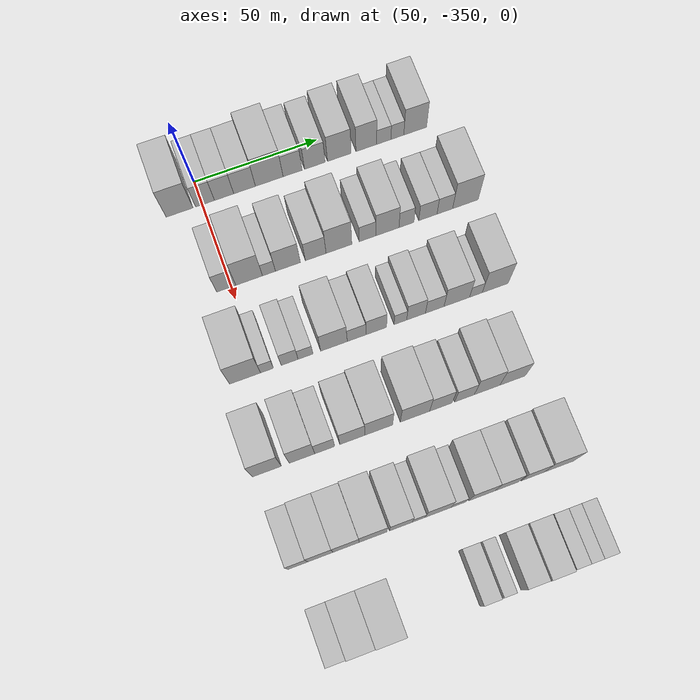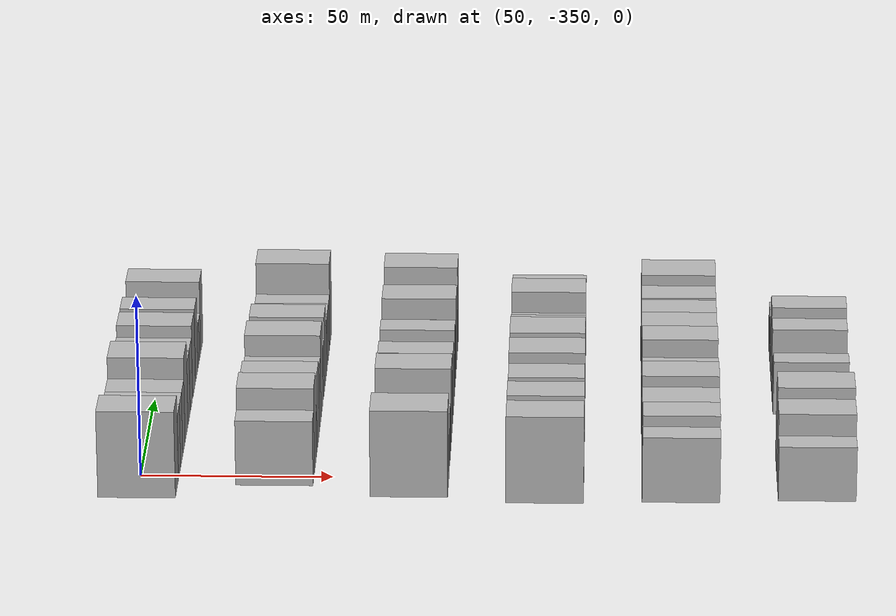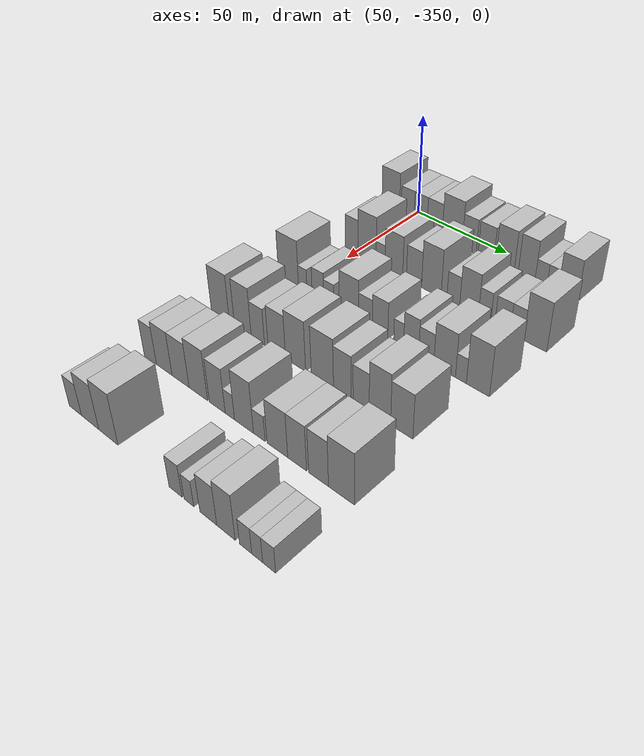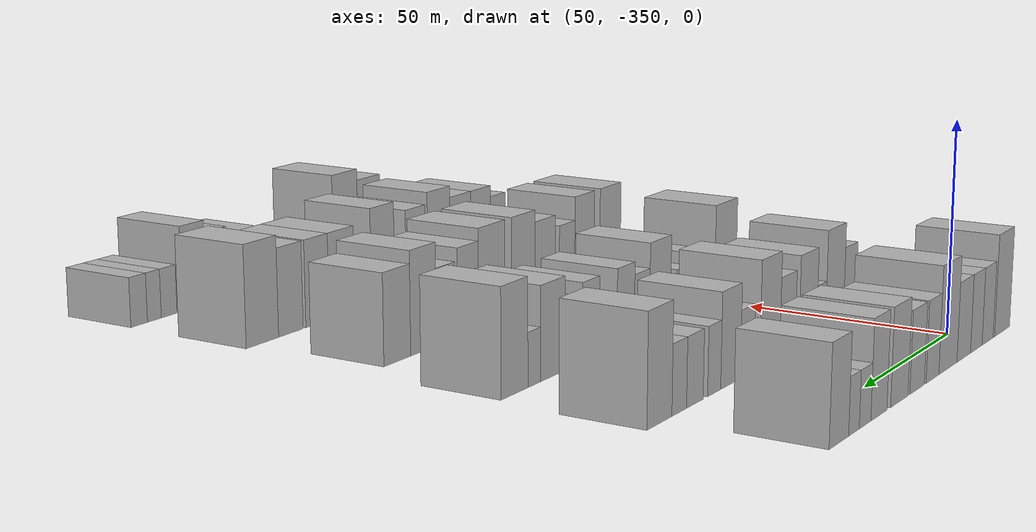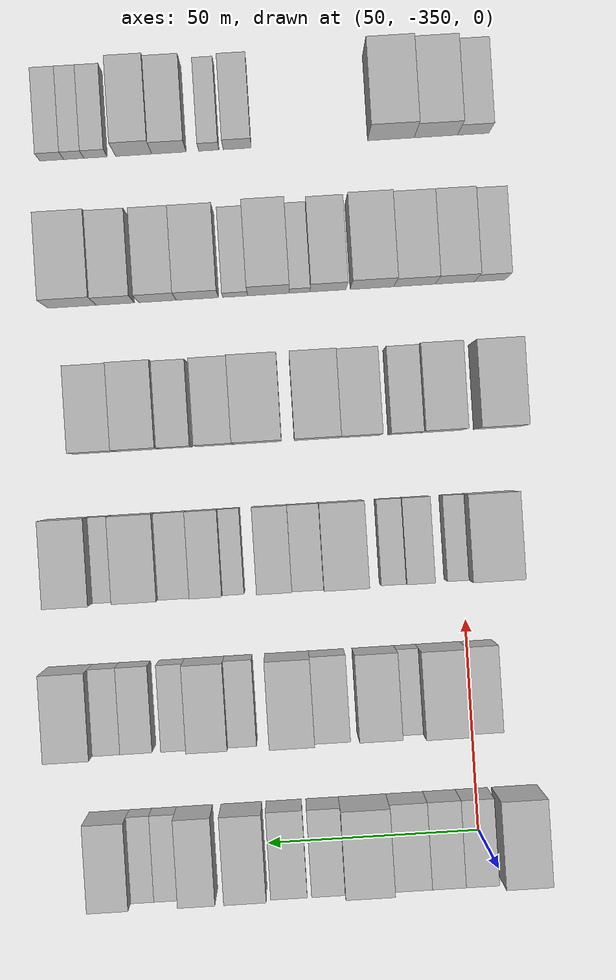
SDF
<sdf version="1.6">
 <world name="default">
  <model name="building_24">
   <static>1</static>
   <pose>50.0000 -359.0265 0 0.000000 0.000000 0.000000</pose>
   <link name="link">
    <pose>0 0 12.00 0 0 0</pose>
    <collision name="collision"><geometry><box><size>20.0000 10.7535 24.0000</size></box></geometry></collision>
    <visual name="visual">
     <cast_shadows>0</cast_shadows>
     <geometry><box><size>20.0000 10.7535 24.0000</size></box></geometry>
     <material>
      <script>
       <uri>model://HANNAS_wall/materials/scripts</uri>
       <uri>model://HANNAS_wall/materials/textures</uri>
       <name>vrc/HANNAS_wall</name>
      </script>
     </material>
    </visual>
   </link>
  </model>
  <model name="building_25">
   <static>1</static>
   <pose>50.0000 -348.8388 0 0.000000 0.000000 0.000000</pose>
   <link name="link">
    <pose>0 0 9.00 0 0 0</pose>
    <collision name="collision"><geometry><box><size>20.0000 7.6219 18.0000</size></box></geometry></collision>
    <visual name="visual">
     <cast_shadows>0</cast_shadows>
     <geometry><box><size>20.0000 7.6219 18.0000</size></box></geometry>
     <material>
      <script>
       <uri>model://HANNAS_wall/materials/scripts</uri>
       <uri>model://HANNAS_wall/materials/textures</uri>
       <name>vrc/HANNAS_wall</name>
      </script>
     </material>
    </visual>
   </link>
  </model>
  <model name="building_26">
   <static>1</static>
   <pose>50.0000 -341.1490 0 0.000000 0.000000 0.000000</pose>
   <link name="link">
    <pose>0 0 9.00 0 0 0</pose>
    <collision name="collision"><geometry><box><size>20.0000 7.7577 18.0000</size></box></geometry></collision>
    <visual name="visual">
     <cast_shadows>0</cast_shadows>
     <geometry><box><size>20.0000 7.7577 18.0000</size></box></geometry>
     <material>
      <script>
       <uri>model://HANNAS_wall/materials/scripts</uri>
       <uri>model://HANNAS_wall/materials/textures</uri>
       <name>vrc/HANNAS_wall</name>
      </script>
     </material>
    </visual>
   </link>
  </model>
  <model name="building_27">
   <static>1</static>
   <pose>50.0000 -332.8798 0 0.000000 0.000000 0.000000</pose>
   <link name="link">
    <pose>0 0 9.00 0 0 0</pose>
    <collision name="collision"><geometry><box><size>20.0000 8.7808 18.0000</size></box></geometry></collision>
    <visual name="visual">
     <cast_shadows>0</cast_shadows>
     <geometry><box><size>20.0000 8.7808 18.0000</size></box></geometry>
     <material>
      <script>
       <uri>model://HANNAS_wall/materials/scripts</uri>
       <uri>model://HANNAS_wall/materials/textures</uri>
       <name>vrc/HANNAS_wall</name>
      </script>
     </material>
    </visual>
   </link>
  </model>
  <model name="building_28">
   <static>1</static>
   <pose>50.0000 -322.8463 0 0.000000 0.000000 0.000000</pose>
   <link name="link">
    <pose>0 0 12.00 0 0 0</pose>
    <collision name="collision"><geometry><box><size>20.0000 11.2861 24.0000</size></box></geometry></collision>
    <visual name="visual">
     <cast_shadows>0</cast_shadows>
     <geometry><box><size>20.0000 11.2861 24.0000</size></box></geometry>
     <material>
      <script>
       <uri>model://HANNAS_wall/materials/scripts</uri>
       <uri>model://HANNAS_wall/materials/textures</uri>
       <name>vrc/HANNAS_wall</name>
      </script>
     </material>
    </visual>
   </link>
  </model>
  <model name="building_29">
   <static>1</static>
   <pose>50.0000 -313.3382 0 0.000000 0.000000 0.000000</pose>
   <link name="link">
    <pose>0 0 9.00 0 0 0</pose>
    <collision name="collision"><geometry><box><size>20.0000 7.7301 18.0000</size></box></geometry></collision>
    <visual name="visual">
     <cast_shadows>0</cast_shadows>
     <geometry><box><size>20.0000 7.7301 18.0000</size></box></geometry>
     <material>
      <script>
       <uri>model://HANNAS_wall/materials/scripts</uri>
       <uri>model://HANNAS_wall/materials/textures</uri>
       <name>vrc/HANNAS_wall</name>
      </script>
     </material>
    </visual>
   </link>
  </model>
  <model name="building_30">
   <static>1</static>
   <pose>50.0000 -304.2649 0 0.000000 0.000000 0.000000</pose>
   <link name="link">
    <pose>0 0 9.00 0 0 0</pose>
    <collision name="collision"><geometry><box><size>20.0000 8.4165 18.0000</size></box></geometry></collision>
    <visual name="visual">
     <cast_shadows>0</cast_shadows>
     <geometry><box><size>20.0000 8.4165 18.0000</size></box></geometry>
     <material>
      <script>
       <uri>model://HANNAS_wall/materials/scripts</uri>
       <uri>model://HANNAS_wall/materials/textures</uri>
       <name>vrc/HANNAS_wall</name>
      </script>
     </material>
    </visual>
   </link>
  </model>
  <model name="building_31">
   <static>1</static>
   <pose>50.0000 -294.2038 0 0.000000 0.000000 0.000000</pose>
   <link name="link">
    <pose>0 0 10.50 0 0 0</pose>
    <collision name="collision"><geometry><box><size>20.0000 9.7058 21.0000</size></box></geometry></collision>
    <visual name="visual">
     <cast_shadows>0</cast_shadows>
     <geometry><box><size>20.0000 9.7058 21.0000</size></box></geometry>
     <material>
      <script>
       <uri>model://HANNAS_wall/materials/scripts</uri>
       <uri>model://HANNAS_wall/materials/textures</uri>
       <name>vrc/HANNAS_wall</name>
      </script>
     </material>
    </visual>
   </link>
  </model>
  <model name="building_32">
   <static>1</static>
   <pose>50.0000 -283.0797 0 0.000000 0.000000 0.000000</pose>
   <link name="link">
    <pose>0 0 10.50 0 0 0</pose>
    <collision name="collision"><geometry><box><size>20.0000 8.5424 21.0000</size></box></geometry></collision>
    <visual name="visual">
     <cast_shadows>0</cast_shadows>
     <geometry><box><size>20.0000 8.5424 21.0000</size></box></geometry>
     <material>
      <script>
       <uri>model://HANNAS_wall/materials/scripts</uri>
       <uri>model://HANNAS_wall/materials/textures</uri>
       <name>vrc/HANNAS_wall</name>
      </script>
     </material>
    </visual>
   </link>
  </model>
  <model name="building_33">
   <static>1</static>
   <pose>50.0000 -275.8419 0 0.000000 0.000000 0.000000</pose>
   <link name="link">
    <pose>0 0 6.00 0 0 0</pose>
    <collision name="collision"><geometry><box><size>20.0000 5.9331 12.0000</size></box></geometry></collision>
    <visual name="visual">
     <cast_shadows>0</cast_shadows>
     <geometry><box><size>20.0000 5.9331 12.0000</size></box></geometry>
     <material>
      <script>
       <uri>model://HANNAS_wall/materials/scripts</uri>
       <uri>model://HANNAS_wall/materials/textures</uri>
       <name>vrc/HANNAS_wall</name>
      </script>
     </material>
    </visual>
   </link>
  </model>
  <model name="building_34">
   <static>1</static>
   <pose>50.0000 -270.1936 0 0.000000 0.000000 0.000000</pose>
   <link name="link">
    <pose>0 0 6.00 0 0 0</pose>
    <collision name="collision"><geometry><box><size>20.0000 5.3635 12.0000</size></box></geometry></collision>
    <visual name="visual">
     <cast_shadows>0</cast_shadows>
     <geometry><box><size>20.0000 5.3635 12.0000</size></box></geometry>
     <material>
      <script>
       <uri>model://HANNAS_wall/materials/scripts</uri>
       <uri>model://HANNAS_wall/materials/textures</uri>
       <name>vrc/HANNAS_wall</name>
      </script>
     </material>
    </visual>
   </link>
  </model>
  <model name="building_35">
   <static>1</static>
   <pose>50.0000 -262.7760 0 0.000000 0.000000 0.000000</pose>
   <link name="link">
    <pose>0 0 10.50 0 0 0</pose>
    <collision name="collision"><geometry><box><size>20.0000 9.4717 21.0000</size></box></geometry></collision>
    <visual name="visual">
     <cast_shadows>0</cast_shadows>
     <geometry><box><size>20.0000 9.4717 21.0000</size></box></geometry>
     <material>
      <script>
       <uri>model://HANNAS_wall/materials/scripts</uri>
       <uri>model://HANNAS_wall/materials/textures</uri>
       <name>vrc/HANNAS_wall</name>
      </script>
     </material>
    </visual>
   </link>
  </model>
  <model name="building_149">
   <static>1</static>
   <pose>85.0000 -352.0449 0 0.000000 0.000000 0.000000</pose>
   <link name="link">
    <pose>0 0 9.00 0 0 0</pose>
    <collision name="collision"><geometry><box><size>20.0000 7.5464 18.0000</size></box></geometry></collision>
    <visual name="visual">
     <cast_shadows>0</cast_shadows>
     <geometry><box><size>20.0000 7.5464 18.0000</size></box></geometry>
     <material>
      <script>
       <uri>model://HANNAS_wall/materials/scripts</uri>
       <uri>model://HANNAS_wall/materials/textures</uri>
       <name>vrc/HANNAS_wall</name>
      </script>
     </material>
    </visual>
   </link>
  </model>
  <model name="building_150">
   <static>1</static>
   <pose>85.0000 -342.9796 0 0.000000 0.000000 0.000000</pose>
   <link name="link">
    <pose>0 0 12.00 0 0 0</pose>
    <collision name="collision"><geometry><box><size>20.0000 10.5842 24.0000</size></box></geometry></collision>
    <visual name="visual">
     <cast_shadows>0</cast_shadows>
     <geometry><box><size>20.0000 10.5842 24.0000</size></box></geometry>
     <material>
      <script>
       <uri>model://HANNAS_wall/materials/scripts</uri>
       <uri>model://HANNAS_wall/materials/textures</uri>
       <name>vrc/HANNAS_wall</name>
      </script>
     </material>
    </visual>
   </link>
  </model>
  <model name="building_151">
   <static>1</static>
   <pose>85.0000 -335.1094 0 0.000000 0.000000 0.000000</pose>
   <link name="link">
    <pose>0 0 6.00 0 0 0</pose>
    <collision name="collision"><geometry><box><size>20.0000 5.1560 12.0000</size></box></geometry></collision>
    <visual name="visual">
     <cast_shadows>0</cast_shadows>
     <geometry><box><size>20.0000 5.1560 12.0000</size></box></geometry>
     <material>
      <script>
       <uri>model://HANNAS_wall/materials/scripts</uri>
       <uri>model://HANNAS_wall/materials/textures</uri>
       <name>vrc/HANNAS_wall</name>
      </script>
     </material>
    </visual>
   </link>
  </model>
  <model name="building_152">
   <static>1</static>
   <pose>85.0000 -327.5653 0 0.000000 0.000000 0.000000</pose>
   <link name="link">
    <pose>0 0 10.50 0 0 0</pose>
    <collision name="collision"><geometry><box><size>20.0000 9.9322 21.0000</size></box></geometry></collision>
    <visual name="visual">
     <cast_shadows>0</cast_shadows>
     <geometry><box><size>20.0000 9.9322 21.0000</size></box></geometry>
     <material>
      <script>
       <uri>model://HANNAS_wall/materials/scripts</uri>
       <uri>model://HANNAS_wall/materials/textures</uri>
       <name>vrc/HANNAS_wall</name>
      </script>
     </material>
    </visual>
   </link>
  </model>
  <model name="building_153">
   <static>1</static>
   <pose>85.0000 -316.4506 0 0.000000 0.000000 0.000000</pose>
   <link name="link">
    <pose>0 0 9.00 0 0 0</pose>
    <collision name="collision"><geometry><box><size>20.0000 8.2972 18.0000</size></box></geometry></collision>
    <visual name="visual">
     <cast_shadows>0</cast_shadows>
     <geometry><box><size>20.0000 8.2972 18.0000</size></box></geometry>
     <material>
      <script>
       <uri>model://HANNAS_wall/materials/scripts</uri>
       <uri>model://HANNAS_wall/materials/textures</uri>
       <name>vrc/HANNAS_wall</name>
      </script>
     </material>
    </visual>
   </link>
  </model>
  <model name="building_154">
   <static>1</static>
   <pose>85.0000 -307.1242 0 0.000000 0.000000 0.000000</pose>
   <link name="link">
    <pose>0 0 12.00 0 0 0</pose>
    <collision name="collision"><geometry><box><size>20.0000 10.3557 24.0000</size></box></geometry></collision>
    <visual name="visual">
     <cast_shadows>0</cast_shadows>
     <geometry><box><size>20.0000 10.3557 24.0000</size></box></geometry>
     <material>
      <script>
       <uri>model://HANNAS_wall/materials/scripts</uri>
       <uri>model://HANNAS_wall/materials/textures</uri>
       <name>vrc/HANNAS_wall</name>
      </script>
     </material>
    </visual>
   </link>
  </model>
  <model name="building_155">
   <static>1</static>
   <pose>85.0000 -295.6260 0 0.000000 0.000000 0.000000</pose>
   <link name="link">
    <pose>0 0 7.50 0 0 0</pose>
    <collision name="collision"><geometry><box><size>20.0000 6.6408 15.0000</size></box></geometry></collision>
    <visual name="visual">
     <cast_shadows>0</cast_shadows>
     <geometry><box><size>20.0000 6.6408 15.0000</size></box></geometry>
     <material>
      <script>
       <uri>model://HANNAS_wall/materials/scripts</uri>
       <uri>model://HANNAS_wall/materials/textures</uri>
       <name>vrc/HANNAS_wall</name>
      </script>
     </material>
    </visual>
   </link>
  </model>
  <model name="building_156">
   <static>1</static>
   <pose>85.0000 -287.5985 0 0.000000 0.000000 0.000000</pose>
   <link name="link">
    <pose>0 0 10.50 0 0 0</pose>
    <collision name="collision"><geometry><box><size>20.0000 9.4142 21.0000</size></box></geometry></collision>
    <visual name="visual">
     <cast_shadows>0</cast_shadows>
     <geometry><box><size>20.0000 9.4142 21.0000</size></box></geometry>
     <material>
      <script>
       <uri>model://HANNAS_wall/materials/scripts</uri>
       <uri>model://HANNAS_wall/materials/textures</uri>
       <name>vrc/HANNAS_wall</name>
      </script>
     </material>
    </visual>
   </link>
  </model>
  <model name="building_157">
   <static>1</static>
   <pose>85.0000 -279.8517 0 0.000000 0.000000 0.000000</pose>
   <link name="link">
    <pose>0 0 7.50 0 0 0</pose>
    <collision name="collision"><geometry><box><size>20.0000 6.0793 15.0000</size></box></geometry></collision>
    <visual name="visual">
     <cast_shadows>0</cast_shadows>
     <geometry><box><size>20.0000 6.0793 15.0000</size></box></geometry>
     <material>
      <script>
       <uri>model://HANNAS_wall/materials/scripts</uri>
       <uri>model://HANNAS_wall/materials/textures</uri>
       <name>vrc/HANNAS_wall</name>
      </script>
     </material>
    </visual>
   </link>
  </model>
  <model name="building_158">
   <static>1</static>
   <pose>85.0000 -271.0899 0 0.000000 0.000000 0.000000</pose>
   <link name="link">
    <pose>0 0 7.50 0 0 0</pose>
    <collision name="collision"><geometry><box><size>20.0000 7.4442 15.0000</size></box></geometry></collision>
    <visual name="visual">
     <cast_shadows>0</cast_shadows>
     <geometry><box><size>20.0000 7.4442 15.0000</size></box></geometry>
     <material>
      <script>
       <uri>model://HANNAS_wall/materials/scripts</uri>
       <uri>model://HANNAS_wall/materials/textures</uri>
       <name>vrc/HANNAS_wall</name>
      </script>
     </material>
    </visual>
   </link>
  </model>
  <model name="building_159">
   <static>1</static>
   <pose>85.0000 -264.1698 0 0.000000 0.000000 0.000000</pose>
   <link name="link">
    <pose>0 0 7.50 0 0 0</pose>
    <collision name="collision"><geometry><box><size>20.0000 6.3959 15.0000</size></box></geometry></collision>
    <visual name="visual">
     <cast_shadows>0</cast_shadows>
     <geometry><box><size>20.0000 6.3959 15.0000</size></box></geometry>
     <material>
      <script>
       <uri>model://HANNAS_wall/materials/scripts</uri>
       <uri>model://HANNAS_wall/materials/textures</uri>
       <name>vrc/HANNAS_wall</name>
      </script>
     </material>
    </visual>
   </link>
  </model>
  <model name="building_160">
   <static>1</static>
   <pose>85.0000 -255.7183 0 0.000000 0.000000 0.000000</pose>
   <link name="link">
    <pose>0 0 12.00 0 0 0</pose>
    <collision name="collision"><geometry><box><size>20.0000 10.5071 24.0000</size></box></geometry></collision>
    <visual name="visual">
     <cast_shadows>0</cast_shadows>
     <geometry><box><size>20.0000 10.5071 24.0000</size></box></geometry>
     <material>
      <script>
       <uri>model://HANNAS_wall/materials/scripts</uri>
       <uri>model://HANNAS_wall/materials/textures</uri>
       <name>vrc/HANNAS_wall</name>
      </script>
     </material>
    </visual>
   </link>
  </model>
  <model name="building_278">
   <static>1</static>
   <pose>120.0000 -356.4660 0 0.000000 0.000000 0.000000</pose>
   <link name="link">
    <pose>0 0 12.00 0 0 0</pose>
    <collision name="collision"><geometry><box><size>20.0000 11.9676 24.0000</size></box></geometry></collision>
    <visual name="visual">
     <cast_shadows>0</cast_shadows>
     <geometry><box><size>20.0000 11.9676 24.0000</size></box></geometry>
     <material>
      <script>
       <uri>model://HANNAS_wall/materials/scripts</uri>
       <uri>model://HANNAS_wall/materials/textures</uri>
       <name>vrc/HANNAS_wall</name>
      </script>
     </material>
    </visual>
   </link>
  </model>
  <model name="building_279">
   <static>1</static>
   <pose>120.0000 -347.9840 0 0.000000 0.000000 0.000000</pose>
   <link name="link">
    <pose>0 0 6.00 0 0 0</pose>
    <collision name="collision"><geometry><box><size>20.0000 4.9965 12.0000</size></box></geometry></collision>
    <visual name="visual">
     <cast_shadows>0</cast_shadows>
     <geometry><box><size>20.0000 4.9965 12.0000</size></box></geometry>
     <material>
      <script>
       <uri>model://HANNAS_wall/materials/scripts</uri>
       <uri>model://HANNAS_wall/materials/textures</uri>
       <name>vrc/HANNAS_wall</name>
      </script>
     </material>
    </visual>
   </link>
  </model>
  <model name="building_280">
   <static>1</static>
   <pose>120.0000 -339.1944 0 0.000000 0.000000 0.000000</pose>
   <link name="link">
    <pose>0 0 7.50 0 0 0</pose>
    <collision name="collision"><geometry><box><size>20.0000 6.5827 15.0000</size></box></geometry></collision>
    <visual name="visual">
     <cast_shadows>0</cast_shadows>
     <geometry><box><size>20.0000 6.5827 15.0000</size></box></geometry>
     <material>
      <script>
       <uri>model://HANNAS_wall/materials/scripts</uri>
       <uri>model://HANNAS_wall/materials/textures</uri>
       <name>vrc/HANNAS_wall</name>
      </script>
     </material>
    </visual>
   </link>
  </model>
  <model name="building_281">
   <static>1</static>
   <pose>120.0000 -332.9940 0 0.000000 0.000000 0.000000</pose>
   <link name="link">
    <pose>0 0 6.00 0 0 0</pose>
    <collision name="collision"><geometry><box><size>20.0000 5.8182 12.0000</size></box></geometry></collision>
    <visual name="visual">
     <cast_shadows>0</cast_shadows>
     <geometry><box><size>20.0000 5.8182 12.0000</size></box></geometry>
     <material>
      <script>
       <uri>model://HANNAS_wall/materials/scripts</uri>
       <uri>model://HANNAS_wall/materials/textures</uri>
       <name>vrc/HANNAS_wall</name>
      </script>
     </material>
    </visual>
   </link>
  </model>
  <model name="building_282">
   <static>1</static>
   <pose>120.0000 -321.8644 0 0.000000 0.000000 0.000000</pose>
   <link name="link">
    <pose>0 0 10.50 0 0 0</pose>
    <collision name="collision"><geometry><box><size>20.0000 10.4409 21.0000</size></box></geometry></collision>
    <visual name="visual">
     <cast_shadows>0</cast_shadows>
     <geometry><box><size>20.0000 10.4409 21.0000</size></box></geometry>
     <material>
      <script>
       <uri>model://HANNAS_wall/materials/scripts</uri>
       <uri>model://HANNAS_wall/materials/textures</uri>
       <name>vrc/HANNAS_wall</name>
      </script>
     </material>
    </visual>
   </link>
  </model>
  <model name="building_283">
   <static>1</static>
   <pose>120.0000 -312.9675 0 0.000000 0.000000 0.000000</pose>
   <link name="link">
    <pose>0 0 7.50 0 0 0</pose>
    <collision name="collision"><geometry><box><size>20.0000 7.3531 15.0000</size></box></geometry></collision>
    <visual name="visual">
     <cast_shadows>0</cast_shadows>
     <geometry><box><size>20.0000 7.3531 15.0000</size></box></geometry>
     <material>
      <script>
       <uri>model://HANNAS_wall/materials/scripts</uri>
       <uri>model://HANNAS_wall/materials/textures</uri>
       <name>vrc/HANNAS_wall</name>
      </script>
     </material>
    </visual>
   </link>
  </model>
  <model name="building_284">
   <static>1</static>
   <pose>120.0000 -305.2260 0 0.000000 0.000000 0.000000</pose>
   <link name="link">
    <pose>0 0 9.00 0 0 0</pose>
    <collision name="collision"><geometry><box><size>20.0000 8.1299 18.0000</size></box></geometry></collision>
    <visual name="visual">
     <cast_shadows>0</cast_shadows>
     <geometry><box><size>20.0000 8.1299 18.0000</size></box></geometry>
     <material>
      <script>
       <uri>model://HANNAS_wall/materials/scripts</uri>
       <uri>model://HANNAS_wall/materials/textures</uri>
       <name>vrc/HANNAS_wall</name>
      </script>
     </material>
    </visual>
   </link>
  </model>
  <model name="building_285">
   <static>1</static>
   <pose>120.0000 -295.6570 0 0.000000 0.000000 0.000000</pose>
   <link name="link">
    <pose>0 0 6.00 0 0 0</pose>
    <collision name="collision"><geometry><box><size>20.0000 5.0080 12.0000</size></box></geometry></collision>
    <visual name="visual">
     <cast_shadows>0</cast_shadows>
     <geometry><box><size>20.0000 5.0080 12.0000</size></box></geometry>
     <material>
      <script>
       <uri>model://HANNAS_wall/materials/scripts</uri>
       <uri>model://HANNAS_wall/materials/textures</uri>
       <name>vrc/HANNAS_wall</name>
      </script>
     </material>
    </visual>
   </link>
  </model>
  <model name="building_286">
   <static>1</static>
   <pose>120.0000 -289.4142 0 0.000000 0.000000 0.000000</pose>
   <link name="link">
    <pose>0 0 9.00 0 0 0</pose>
    <collision name="collision"><geometry><box><size>20.0000 7.4776 18.0000</size></box></geometry></collision>
    <visual name="visual">
     <cast_shadows>0</cast_shadows>
     <geometry><box><size>20.0000 7.4776 18.0000</size></box></geometry>
     <material>
      <script>
       <uri>model://HANNAS_wall/materials/scripts</uri>
       <uri>model://HANNAS_wall/materials/textures</uri>
       <name>vrc/HANNAS_wall</name>
      </script>
     </material>
    </visual>
   </link>
  </model>
  <model name="building_287">
   <static>1</static>
   <pose>120.0000 -281.9789 0 0.000000 0.000000 0.000000</pose>
   <link name="link">
    <pose>0 0 7.50 0 0 0</pose>
    <collision name="collision"><geometry><box><size>20.0000 7.3929 15.0000</size></box></geometry></collision>
    <visual name="visual">
     <cast_shadows>0</cast_shadows>
     <geometry><box><size>20.0000 7.3929 15.0000</size></box></geometry>
     <material>
      <script>
       <uri>model://HANNAS_wall/materials/scripts</uri>
       <uri>model://HANNAS_wall/materials/textures</uri>
       <name>vrc/HANNAS_wall</name>
      </script>
     </material>
    </visual>
   </link>
  </model>
  <model name="building_288">
   <static>1</static>
   <pose>120.0000 -273.1396 0 0.000000 0.000000 0.000000</pose>
   <link name="link">
    <pose>0 0 10.50 0 0 0</pose>
    <collision name="collision"><geometry><box><size>20.0000 10.2859 21.0000</size></box></geometry></collision>
    <visual name="visual">
     <cast_shadows>0</cast_shadows>
     <geometry><box><size>20.0000 10.2859 21.0000</size></box></geometry>
     <material>
      <script>
       <uri>model://HANNAS_wall/materials/scripts</uri>
       <uri>model://HANNAS_wall/materials/textures</uri>
       <name>vrc/HANNAS_wall</name>
      </script>
     </material>
    </visual>
   </link>
  </model>
  <model name="building_289">
   <static>1</static>
   <pose>120.0000 -265.4649 0 0.000000 0.000000 0.000000</pose>
   <link name="link">
    <pose>0 0 6.00 0 0 0</pose>
    <collision name="collision"><geometry><box><size>20.0000 5.0634 12.0000</size></box></geometry></collision>
    <visual name="visual">
     <cast_shadows>0</cast_shadows>
     <geometry><box><size>20.0000 5.0634 12.0000</size></box></geometry>
     <material>
      <script>
       <uri>model://HANNAS_wall/materials/scripts</uri>
       <uri>model://HANNAS_wall/materials/textures</uri>
       <name>vrc/HANNAS_wall</name>
      </script>
     </material>
    </visual>
   </link>
  </model>
  <model name="building_290">
   <static>1</static>
   <pose>120.0000 -257.6985 0 0.000000 0.000000 0.000000</pose>
   <link name="link">
    <pose>0 0 12.00 0 0 0</pose>
    <collision name="collision"><geometry><box><size>20.0000 10.4695 24.0000</size></box></geometry></collision>
    <visual name="visual">
     <cast_shadows>0</cast_shadows>
     <geometry><box><size>20.0000 10.4695 24.0000</size></box></geometry>
     <material>
      <script>
       <uri>model://HANNAS_wall/materials/scripts</uri>
       <uri>model://HANNAS_wall/materials/textures</uri>
       <name>vrc/HANNAS_wall</name>
      </script>
     </material>
    </visual>
   </link>
  </model>
  <model name="building_398">
   <static>1</static>
   <pose>155.0000 -360.1018 0 0.000000 0.000000 0.000000</pose>
   <link name="link">
    <pose>0 0 12.00 0 0 0</pose>
    <collision name="collision"><geometry><box><size>20.0000 10.8870 24.0000</size></box></geometry></collision>
    <visual name="visual">
     <cast_shadows>0</cast_shadows>
     <geometry><box><size>20.0000 10.8870 24.0000</size></box></geometry>
     <material>
      <script>
       <uri>model://HANNAS_wall/materials/scripts</uri>
       <uri>model://HANNAS_wall/materials/textures</uri>
       <name>vrc/HANNAS_wall</name>
      </script>
     </material>
    </visual>
   </link>
  </model>
  <model name="building_399">
   <static>1</static>
   <pose>155.0000 -346.7911 0 0.000000 0.000000 0.000000</pose>
   <link name="link">
    <pose>0 0 12.00 0 0 0</pose>
    <collision name="collision"><geometry><box><size>20.0000 9.7343 24.0000</size></box></geometry></collision>
    <visual name="visual">
     <cast_shadows>0</cast_shadows>
     <geometry><box><size>20.0000 9.7343 24.0000</size></box></geometry>
     <material>
      <script>
       <uri>model://HANNAS_wall/materials/scripts</uri>
       <uri>model://HANNAS_wall/materials/textures</uri>
       <name>vrc/HANNAS_wall</name>
      </script>
     </material>
    </visual>
   </link>
  </model>
  <model name="building_400">
   <static>1</static>
   <pose>155.0000 -338.1324 0 0.000000 0.000000 0.000000</pose>
   <link name="link">
    <pose>0 0 9.00 0 0 0</pose>
    <collision name="collision"><geometry><box><size>20.0000 7.5832 18.0000</size></box></geometry></collision>
    <visual name="visual">
     <cast_shadows>0</cast_shadows>
     <geometry><box><size>20.0000 7.5832 18.0000</size></box></geometry>
     <material>
      <script>
       <uri>model://HANNAS_wall/materials/scripts</uri>
       <uri>model://HANNAS_wall/materials/textures</uri>
       <name>vrc/HANNAS_wall</name>
      </script>
     </material>
    </visual>
   </link>
  </model>
  <model name="building_401">
   <static>1</static>
   <pose>155.0000 -327.5429 0 0.000000 0.000000 0.000000</pose>
   <link name="link">
    <pose>0 0 10.50 0 0 0</pose>
    <collision name="collision"><geometry><box><size>20.0000 9.5957 21.0000</size></box></geometry></collision>
    <visual name="visual">
     <cast_shadows>0</cast_shadows>
     <geometry><box><size>20.0000 9.5957 21.0000</size></box></geometry>
     <material>
      <script>
       <uri>model://HANNAS_wall/materials/scripts</uri>
       <uri>model://HANNAS_wall/materials/textures</uri>
       <name>vrc/HANNAS_wall</name>
      </script>
     </material>
    </visual>
   </link>
  </model>
  <model name="building_402">
   <static>1</static>
   <pose>155.0000 -317.3906 0 0.000000 0.000000 0.000000</pose>
   <link name="link">
    <pose>0 0 12.00 0 0 0</pose>
    <collision name="collision"><geometry><box><size>20.0000 10.7089 24.0000</size></box></geometry></collision>
    <visual name="visual">
     <cast_shadows>0</cast_shadows>
     <geometry><box><size>20.0000 10.7089 24.0000</size></box></geometry>
     <material>
      <script>
       <uri>model://HANNAS_wall/materials/scripts</uri>
       <uri>model://HANNAS_wall/materials/textures</uri>
       <name>vrc/HANNAS_wall</name>
      </script>
     </material>
    </visual>
   </link>
  </model>
  <model name="building_403">
   <static>1</static>
   <pose>155.0000 -303.3240 0 0.000000 0.000000 0.000000</pose>
   <link name="link">
    <pose>0 0 12.00 0 0 0</pose>
    <collision name="collision"><geometry><box><size>20.0000 11.4244 24.0000</size></box></geometry></collision>
    <visual name="visual">
     <cast_shadows>0</cast_shadows>
     <geometry><box><size>20.0000 11.4244 24.0000</size></box></geometry>
     <material>
      <script>
       <uri>model://HANNAS_wall/materials/scripts</uri>
       <uri>model://HANNAS_wall/materials/textures</uri>
       <name>vrc/HANNAS_wall</name>
      </script>
     </material>
    </visual>
   </link>
  </model>
  <model name="building_404">
   <static>1</static>
   <pose>155.0000 -293.2525 0 0.000000 0.000000 0.000000</pose>
   <link name="link">
    <pose>0 0 10.50 0 0 0</pose>
    <collision name="collision"><geometry><box><size>20.0000 8.7186 21.0000</size></box></geometry></collision>
    <visual name="visual">
     <cast_shadows>0</cast_shadows>
     <geometry><box><size>20.0000 8.7186 21.0000</size></box></geometry>
     <material>
      <script>
       <uri>model://HANNAS_wall/materials/scripts</uri>
       <uri>model://HANNAS_wall/materials/textures</uri>
       <name>vrc/HANNAS_wall</name>
      </script>
     </material>
    </visual>
   </link>
  </model>
  <model name="building_405">
   <static>1</static>
   <pose>155.0000 -284.0314 0 0.000000 0.000000 0.000000</pose>
   <link name="link">
    <pose>0 0 9.00 0 0 0</pose>
    <collision name="collision"><geometry><box><size>20.0000 7.7238 18.0000</size></box></geometry></collision>
    <visual name="visual">
     <cast_shadows>0</cast_shadows>
     <geometry><box><size>20.0000 7.7238 18.0000</size></box></geometry>
     <material>
      <script>
       <uri>model://HANNAS_wall/materials/scripts</uri>
       <uri>model://HANNAS_wall/materials/textures</uri>
       <name>vrc/HANNAS_wall</name>
      </script>
     </material>
    </visual>
   </link>
  </model>
  <model name="building_406">
   <static>1</static>
   <pose>155.0000 -275.1392 0 0.000000 0.000000 0.000000</pose>
   <link name="link">
    <pose>0 0 12.00 0 0 0</pose>
    <collision name="collision"><geometry><box><size>20.0000 10.0605 24.0000</size></box></geometry></collision>
    <visual name="visual">
     <cast_shadows>0</cast_shadows>
     <geometry><box><size>20.0000 10.0605 24.0000</size></box></geometry>
     <material>
      <script>
       <uri>model://HANNAS_wall/materials/scripts</uri>
       <uri>model://HANNAS_wall/materials/textures</uri>
       <name>vrc/HANNAS_wall</name>
      </script>
     </material>
    </visual>
   </link>
  </model>
  <model name="building_407">
   <static>1</static>
   <pose>155.0000 -265.0425 0 0.000000 0.000000 0.000000</pose>
   <link name="link">
    <pose>0 0 10.50 0 0 0</pose>
    <collision name="collision"><geometry><box><size>20.0000 10.1330 21.0000</size></box></geometry></collision>
    <visual name="visual">
     <cast_shadows>0</cast_shadows>
     <geometry><box><size>20.0000 10.1330 21.0000</size></box></geometry>
     <material>
      <script>
       <uri>model://HANNAS_wall/materials/scripts</uri>
       <uri>model://HANNAS_wall/materials/textures</uri>
       <name>vrc/HANNAS_wall</name>
      </script>
     </material>
    </visual>
   </link>
  </model>
  <model name="building_526">
   <static>1</static>
   <pose>190.0000 -360.6820 0 0.000000 0.000000 0.000000</pose>
   <link name="link">
    <pose>0 0 9.00 0 0 0</pose>
    <collision name="collision"><geometry><box><size>20.0000 7.3238 18.0000</size></box></geometry></collision>
    <visual name="visual">
     <cast_shadows>0</cast_shadows>
     <geometry><box><size>20.0000 7.3238 18.0000</size></box></geometry>
     <material>
      <script>
       <uri>model://HANNAS_wall/materials/scripts</uri>
       <uri>model://HANNAS_wall/materials/textures</uri>
       <name>vrc/HANNAS_wall</name>
      </script>
     </material>
    </visual>
   </link>
  </model>
  <model name="building_527">
   <static>1</static>
   <pose>190.0000 -352.3551 0 0.000000 0.000000 0.000000</pose>
   <link name="link">
    <pose>0 0 10.50 0 0 0</pose>
    <collision name="collision"><geometry><box><size>20.0000 9.3299 21.0000</size></box></geometry></collision>
    <visual name="visual">
     <cast_shadows>0</cast_shadows>
     <geometry><box><size>20.0000 9.3299 21.0000</size></box></geometry>
     <material>
      <script>
       <uri>model://HANNAS_wall/materials/scripts</uri>
       <uri>model://HANNAS_wall/materials/textures</uri>
       <name>vrc/HANNAS_wall</name>
      </script>
     </material>
    </visual>
   </link>
  </model>
  <model name="building_528">
   <static>1</static>
   <pose>190.0000 -342.7732 0 0.000000 0.000000 0.000000</pose>
   <link name="link">
    <pose>0 0 10.50 0 0 0</pose>
    <collision name="collision"><geometry><box><size>20.0000 9.8337 21.0000</size></box></geometry></collision>
    <visual name="visual">
     <cast_shadows>0</cast_shadows>
     <geometry><box><size>20.0000 9.8337 21.0000</size></box></geometry>
     <material>
      <script>
       <uri>model://HANNAS_wall/materials/scripts</uri>
       <uri>model://HANNAS_wall/materials/textures</uri>
       <name>vrc/HANNAS_wall</name>
      </script>
     </material>
    </visual>
   </link>
  </model>
  <model name="building_529">
   <static>1</static>
   <pose>190.0000 -332.6865 0 0.000000 0.000000 0.000000</pose>
   <link name="link">
    <pose>0 0 12.00 0 0 0</pose>
    <collision name="collision"><geometry><box><size>20.0000 10.3398 24.0000</size></box></geometry></collision>
    <visual name="visual">
     <cast_shadows>0</cast_shadows>
     <geometry><box><size>20.0000 10.3398 24.0000</size></box></geometry>
     <material>
      <script>
       <uri>model://HANNAS_wall/materials/scripts</uri>
       <uri>model://HANNAS_wall/materials/textures</uri>
       <name>vrc/HANNAS_wall</name>
      </script>
     </material>
    </visual>
   </link>
  </model>
  <model name="building_530">
   <static>1</static>
   <pose>190.0000 -322.2341 0 0.000000 0.000000 0.000000</pose>
   <link name="link">
    <pose>0 0 10.50 0 0 0</pose>
    <collision name="collision"><geometry><box><size>20.0000 8.5649 21.0000</size></box></geometry></collision>
    <visual name="visual">
     <cast_shadows>0</cast_shadows>
     <geometry><box><size>20.0000 8.5649 21.0000</size></box></geometry>
     <material>
      <script>
       <uri>model://HANNAS_wall/materials/scripts</uri>
       <uri>model://HANNAS_wall/materials/textures</uri>
       <name>vrc/HANNAS_wall</name>
      </script>
     </material>
    </visual>
   </link>
  </model>
  <model name="building_531">
   <static>1</static>
   <pose>190.0000 -315.4791 0 0.000000 0.000000 0.000000</pose>
   <link name="link">
    <pose>0 0 6.00 0 0 0</pose>
    <collision name="collision"><geometry><box><size>20.0000 4.9453 12.0000</size></box></geometry></collision>
    <visual name="visual">
     <cast_shadows>0</cast_shadows>
     <geometry><box><size>20.0000 4.9453 12.0000</size></box></geometry>
     <material>
      <script>
       <uri>model://HANNAS_wall/materials/scripts</uri>
       <uri>model://HANNAS_wall/materials/textures</uri>
       <name>vrc/HANNAS_wall</name>
      </script>
     </material>
    </visual>
   </link>
  </model>
  <model name="building_532">
   <static>1</static>
   <pose>190.0000 -308.1052 0 0.000000 0.000000 0.000000</pose>
   <link name="link">
    <pose>0 0 12.00 0 0 0</pose>
    <collision name="collision"><geometry><box><size>20.0000 9.8024 24.0000</size></box></geometry></collision>
    <visual name="visual">
     <cast_shadows>0</cast_shadows>
     <geometry><box><size>20.0000 9.8024 24.0000</size></box></geometry>
     <material>
      <script>
       <uri>model://HANNAS_wall/materials/scripts</uri>
       <uri>model://HANNAS_wall/materials/textures</uri>
       <name>vrc/HANNAS_wall</name>
      </script>
     </material>
    </visual>
   </link>
  </model>
  <model name="building_533">
   <static>1</static>
   <pose>190.0000 -300.2518 0 0.000000 0.000000 0.000000</pose>
   <link name="link">
    <pose>0 0 6.00 0 0 0</pose>
    <collision name="collision"><geometry><box><size>20.0000 5.9045 12.0000</size></box></geometry></collision>
    <visual name="visual">
     <cast_shadows>0</cast_shadows>
     <geometry><box><size>20.0000 5.9045 12.0000</size></box></geometry>
     <material>
      <script>
       <uri>model://HANNAS_wall/materials/scripts</uri>
       <uri>model://HANNAS_wall/materials/textures</uri>
       <name>vrc/HANNAS_wall</name>
      </script>
     </material>
    </visual>
   </link>
  </model>
  <model name="building_534">
   <static>1</static>
   <pose>190.0000 -291.2587 0 0.000000 0.000000 0.000000</pose>
   <link name="link">
    <pose>0 0 10.50 0 0 0</pose>
    <collision name="collision"><geometry><box><size>20.0000 10.0816 21.0000</size></box></geometry></collision>
    <visual name="visual">
     <cast_shadows>0</cast_shadows>
     <geometry><box><size>20.0000 10.0816 21.0000</size></box></geometry>
     <material>
      <script>
       <uri>model://HANNAS_wall/materials/scripts</uri>
       <uri>model://HANNAS_wall/materials/textures</uri>
       <name>vrc/HANNAS_wall</name>
      </script>
     </material>
    </visual>
   </link>
  </model>
  <model name="building_535">
   <static>1</static>
   <pose>190.0000 -281.7574 0 0.000000 0.000000 0.000000</pose>
   <link name="link">
    <pose>0 0 10.50 0 0 0</pose>
    <collision name="collision"><geometry><box><size>20.0000 8.9210 21.0000</size></box></geometry></collision>
    <visual name="visual">
     <cast_shadows>0</cast_shadows>
     <geometry><box><size>20.0000 8.9210 21.0000</size></box></geometry>
     <material>
      <script>
       <uri>model://HANNAS_wall/materials/scripts</uri>
       <uri>model://HANNAS_wall/materials/textures</uri>
       <name>vrc/HANNAS_wall</name>
      </script>
     </material>
    </visual>
   </link>
  </model>
  <model name="building_536">
   <static>1</static>
   <pose>190.0000 -271.7629 0 0.000000 0.000000 0.000000</pose>
   <link name="link">
    <pose>0 0 10.50 0 0 0</pose>
    <collision name="collision"><geometry><box><size>20.0000 9.0681 21.0000</size></box></geometry></collision>
    <visual name="visual">
     <cast_shadows>0</cast_shadows>
     <geometry><box><size>20.0000 9.0681 21.0000</size></box></geometry>
     <material>
      <script>
       <uri>model://HANNAS_wall/materials/scripts</uri>
       <uri>model://HANNAS_wall/materials/textures</uri>
       <name>vrc/HANNAS_wall</name>
      </script>
     </material>
    </visual>
   </link>
  </model>
  <model name="building_537">
   <static>1</static>
   <pose>190.0000 -261.4674 0 0.000000 0.000000 0.000000</pose>
   <link name="link">
    <pose>0 0 12.00 0 0 0</pose>
    <collision name="collision"><geometry><box><size>20.0000 11.5229 24.0000</size></box></geometry></collision>
    <visual name="visual">
     <cast_shadows>0</cast_shadows>
     <geometry><box><size>20.0000 11.5229 24.0000</size></box></geometry>
     <material>
      <script>
       <uri>model://HANNAS_wall/materials/scripts</uri>
       <uri>model://HANNAS_wall/materials/textures</uri>
       <name>vrc/HANNAS_wall</name>
      </script>
     </material>
    </visual>
   </link>
  </model>
  <model name="building_653">
   <static>1</static>
   <pose>225.0000 -358.9921 0 0.000000 0.000000 0.000000</pose>
   <link name="link">
    <pose>0 0 7.50 0 0 0</pose>
    <collision name="collision"><geometry><box><size>20.0000 7.4391 15.0000</size></box></geometry></collision>
    <visual name="visual">
     <cast_shadows>0</cast_shadows>
     <geometry><box><size>20.0000 7.4391 15.0000</size></box></geometry>
     <material>
      <script>
       <uri>model://HANNAS_wall/materials/scripts</uri>
       <uri>model://HANNAS_wall/materials/textures</uri>
       <name>vrc/HANNAS_wall</name>
      </script>
     </material>
    </visual>
   </link>
  </model>
  <model name="building_654">
   <static>1</static>
   <pose>225.0000 -350.0972 0 0.000000 0.000000 0.000000</pose>
   <link name="link">
    <pose>0 0 10.50 0 0 0</pose>
    <collision name="collision"><geometry><box><size>20.0000 10.3508 21.0000</size></box></geometry></collision>
    <visual name="visual">
     <cast_shadows>0</cast_shadows>
     <geometry><box><size>20.0000 10.3508 21.0000</size></box></geometry>
     <material>
      <script>
       <uri>model://HANNAS_wall/materials/scripts</uri>
       <uri>model://HANNAS_wall/materials/textures</uri>
       <name>vrc/HANNAS_wall</name>
      </script>
     </material>
    </visual>
   </link>
  </model>
  <model name="building_655">
   <static>1</static>
   <pose>225.0000 -339.3816 0 0.000000 0.000000 0.000000</pose>
   <link name="link">
    <pose>0 0 12.00 0 0 0</pose>
    <collision name="collision"><geometry><box><size>20.0000 11.0802 24.0000</size></box></geometry></collision>
    <visual name="visual">
     <cast_shadows>0</cast_shadows>
     <geometry><box><size>20.0000 11.0802 24.0000</size></box></geometry>
     <material>
      <script>
       <uri>model://HANNAS_wall/materials/scripts</uri>
       <uri>model://HANNAS_wall/materials/textures</uri>
       <name>vrc/HANNAS_wall</name>
      </script>
     </material>
    </visual>
   </link>
  </model>
  <model name="building_656">
   <static>1</static>
   <pose>225.0000 -302.8557 0 0.000000 0.000000 0.000000</pose>
   <link name="link">
    <pose>0 0 7.50 0 0 0</pose>
    <collision name="collision"><geometry><box><size>20.0000 6.6572 15.0000</size></box></geometry></collision>
    <visual name="visual">
     <cast_shadows>0</cast_shadows>
     <geometry><box><size>20.0000 6.6572 15.0000</size></box></geometry>
     <material>
      <script>
       <uri>model://HANNAS_wall/materials/scripts</uri>
       <uri>model://HANNAS_wall/materials/textures</uri>
       <name>vrc/HANNAS_wall</name>
      </script>
     </material>
    </visual>
   </link>
  </model>
  <model name="building_657">
   <static>1</static>
   <pose>225.0000 -296.1225 0 0.000000 0.000000 0.000000</pose>
   <link name="link">
    <pose>0 0 6.00 0 0 0</pose>
    <collision name="collision"><geometry><box><size>20.0000 4.8092 12.0000</size></box></geometry></collision>
    <visual name="visual">
     <cast_shadows>0</cast_shadows>
     <geometry><box><size>20.0000 4.8092 12.0000</size></box></geometry>
     <material>
      <script>
       <uri>model://HANNAS_wall/materials/scripts</uri>
       <uri>model://HANNAS_wall/materials/textures</uri>
       <name>vrc/HANNAS_wall</name>
      </script>
     </material>
    </visual>
   </link>
  </model>
  <model name="building_658">
   <static>1</static>
   <pose>225.0000 -286.6377 0 0.000000 0.000000 0.000000</pose>
   <link name="link">
    <pose>0 0 9.00 0 0 0</pose>
    <collision name="collision"><geometry><box><size>20.0000 8.1605 18.0000</size></box></geometry></collision>
    <visual name="visual">
     <cast_shadows>0</cast_shadows>
     <geometry><box><size>20.0000 8.1605 18.0000</size></box></geometry>
     <material>
      <script>
       <uri>model://HANNAS_wall/materials/scripts</uri>
       <uri>model://HANNAS_wall/materials/textures</uri>
       <name>vrc/HANNAS_wall</name>
      </script>
     </material>
    </visual>
   </link>
  </model>
  <model name="building_659">
   <static>1</static>
   <pose>225.0000 -278.2607 0 0.000000 0.000000 0.000000</pose>
   <link name="link">
    <pose>0 0 10.50 0 0 0</pose>
    <collision name="collision"><geometry><box><size>20.0000 8.5934 21.0000</size></box></geometry></collision>
    <visual name="visual">
     <cast_shadows>0</cast_shadows>
     <geometry><box><size>20.0000 8.5934 21.0000</size></box></geometry>
     <material>
      <script>
       <uri>model://HANNAS_wall/materials/scripts</uri>
       <uri>model://HANNAS_wall/materials/textures</uri>
       <name>vrc/HANNAS_wall</name>
      </script>
     </material>
    </visual>
   </link>
  </model>
  <model name="building_660">
   <static>1</static>
   <pose>225.0000 -269.2006 0 0.000000 0.000000 0.000000</pose>
   <link name="link">
    <pose>0 0 6.00 0 0 0</pose>
    <collision name="collision"><geometry><box><size>20.0000 5.5268 12.0000</size></box></geometry></collision>
    <visual name="visual">
     <cast_shadows>0</cast_shadows>
     <geometry><box><size>20.0000 5.5268 12.0000</size></box></geometry>
     <material>
      <script>
       <uri>model://HANNAS_wall/materials/scripts</uri>
       <uri>model://HANNAS_wall/materials/textures</uri>
       <name>vrc/HANNAS_wall</name>
      </script>
     </material>
    </visual>
   </link>
  </model>
  <model name="building_661">
   <static>1</static>
   <pose>225.0000 -264.0304 0 0.000000 0.000000 0.000000</pose>
   <link name="link">
    <pose>0 0 6.00 0 0 0</pose>
    <collision name="collision"><geometry><box><size>20.0000 4.8134 12.0000</size></box></geometry></collision>
    <visual name="visual">
     <cast_shadows>0</cast_shadows>
     <geometry><box><size>20.0000 4.8134 12.0000</size></box></geometry>
     <material>
      <script>
       <uri>model://HANNAS_wall/materials/scripts</uri>
       <uri>model://HANNAS_wall/materials/textures</uri>
       <name>vrc/HANNAS_wall</name>
      </script>
     </material>
    </visual>
   </link>
  </model>
  <model name="building_662">
   <static>1</static>
   <pose>225.0000 -258.7988 0 0.000000 0.000000 0.000000</pose>
   <link name="link">
    <pose>0 0 6.00 0 0 0</pose>
    <collision name="collision"><geometry><box><size>20.0000 5.6498 12.0000</size></box></geometry></collision>
    <visual name="visual">
     <cast_shadows>0</cast_shadows>
     <geometry><box><size>20.0000 5.6498 12.0000</size></box></geometry>
     <material>
      <script>
       <uri>model://HANNAS_wall/materials/scripts</uri>
       <uri>model://HANNAS_wall/materials/textures</uri>
       <name>vrc/HANNAS_wall</name>
      </script>
     </material>
    </visual>
   </link>
  </model>
 </world>
</sdf>
